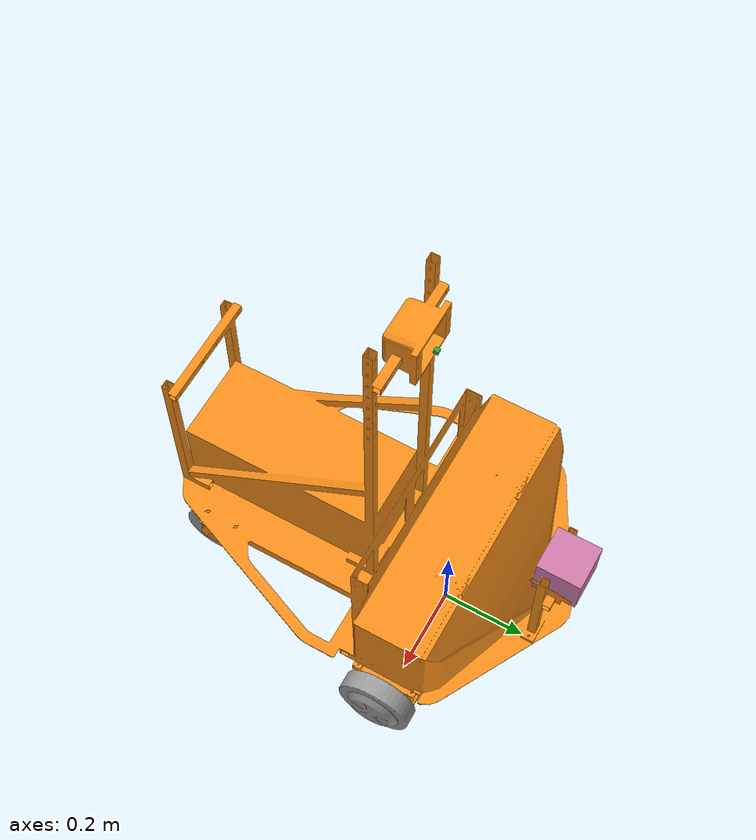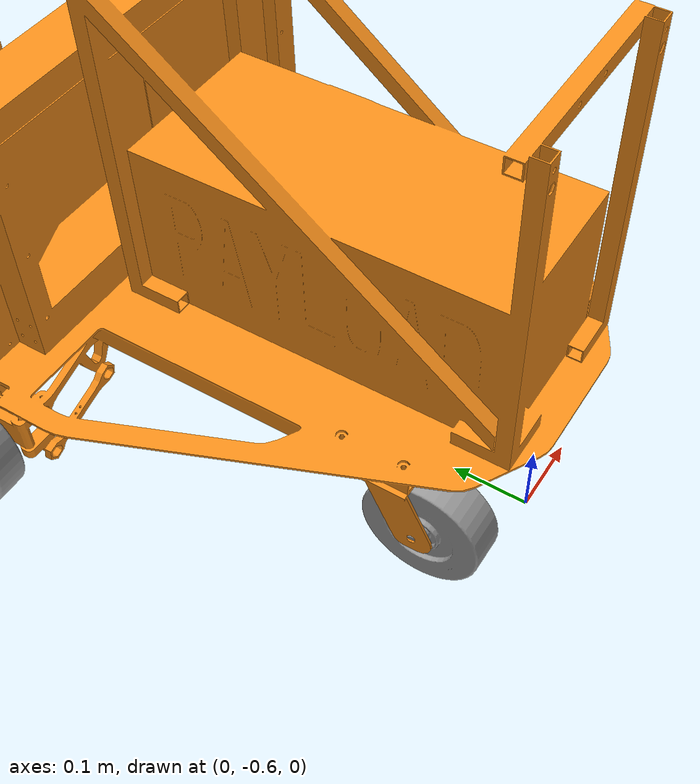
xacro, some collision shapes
<?xml version='1.0'?>

<robot name="myrobot" xmlns:xacro="http://www.ros.org/wiki/xacro">

  <!--camera -->
  <xacro:property name="cameraSize" value="0.01"/>
  <xacro:property name="cameraMass" value="0.03"/>

  <!--INS -->

  <!--Payload -->

   <!--Laptop -->

  <xacro:include filename="$(find boilerbot_description_integ)/urdf/mybot.gazebo" />
  <xacro:include filename="$(find boilerbot_description_integ)/urdf/materials.xacro" />
  <xacro:include filename="$(find boilerbot_description_integ)/urdf/macros.xacro" />

  <link name="chassis">
    <pose>0 0 0 0 0</pose>
    <collision>
      <origin xyz="0 0 0" rpy="0 0 0"/>
      <geometry>
    	<box size="0.1 0.1 0.1"/>
      </geometry>
    </collision>

    <visual>
      <origin xyz="0 0 0" rpy="0 0 0"/>
      <geometry>
        <mesh filename="package://boilerbot_description_integ/meshes/bodyNoWheels.dae"/>
      </geometry>
    </visual>

    <inertial>
      <mass value="76.65" />
      <origin xyz="0 0 0" rpy="0 0 0"/>
      <inertia ixx="1" ixy="0" ixz="0" iyy="1" iyz="0" izz="1" />
    </inertial>
  </link>

<!--Left Drive Wheel -->

  <link name="left_drive_wheel">
    <collision>
      <origin xyz="0 0 0" rpy="0 0 0"/>
      <geometry>
        <mesh filename="package://boilerbot_description_integ/meshes/driveWheelLeft.dae"/>
      </geometry>
    </collision>

    <visual>
      <origin xyz="0 0 0" rpy="0 0 0"/>
      <geometry>
        <mesh filename="package://boilerbot_description_integ/meshes/driveWheelLeft.dae"/>
      </geometry>
    </visual>

    <inertial>
      <mass value="2.5" />
      <origin xyz="0 0 0" rpy="0 0 0"/>
      <inertia ixx="1" ixy="0" ixz="0" iyy="1" iyz="0" izz="1" />
    </inertial>
  </link>

  <joint type="continuous" name="left_drive_hinge">
    <origin xyz="-0.0 0.0 0" rpy="0 0 0"/>
    <child link="left_drive_wheel"/>
    <parent link="chassis"/>
    <axis xyz="0 1 0" rpy="0 0 0"/>
    <limit effort="100" velocity="100"/>
    <joint_properties damping="0.0" friction="0.0"/>
  </joint>

<!--Right Drive Wheel -->

  <link name="right_drive_wheel">
    <collision>
      <origin xyz="0 0 0" rpy="0 0 0"/>
      <geometry>
        <mesh filename="package://boilerbot_description_integ/meshes/driveWheelRight.dae"/>
      </geometry>
    </collision>

    <visual>
      <origin xyz="0 0 0" rpy="0 0 0"/>
      <geometry>
        <mesh filename="package://boilerbot_description_integ/meshes/driveWheelRight.dae"/>
      </geometry>
    </visual>

    <inertial>
      <mass value="2.5" />
      <origin xyz="0 0 0" rpy="0 0 0"/>
      <inertia ixx="1" ixy="0" ixz="0" iyy="1" iyz="0" izz="1" />
    </inertial>
  </link>

  <joint type="continuous" name="right_drive_hinge">
    <origin xyz="-0.0 0.0 0" rpy="0 0 0"/>
    <child link="right_drive_wheel"/>
    <parent link="chassis"/>
    <axis xyz="0 1 0" rpy="0 0 0"/>
    <limit effort="100" velocity="100"/>
    <joint_properties damping="0.0" friction="0.0"/>
  </joint>

<!--Left Castor Wheel -->

  <link name="left_castor_wheel">
    <collision>
      <origin xyz="0 0 0" rpy="0 0 0"/>
      <geometry>
        <mesh filename="package://boilerbot_description_integ/meshes/castorLeft.dae"/>
      </geometry>
    </collision>

    <visual>
      <origin xyz="0 0 0" rpy="0 0 0"/>
      <geometry>
        <mesh filename="package://boilerbot_description_integ/meshes/castorLeft.dae"/>
      </geometry>
    </visual>

    <inertial>
      <mass value="1.5" />
      <origin xyz="0 0 0" rpy="0 0 0"/>
      <inertia ixx="1" ixy="0" ixz="0" iyy="1" iyz="0" izz="1" />
    </inertial>
  </link>

  <joint type="continuous" name="left_castor_hinge">
    <origin xyz="0.0 0.0 0" rpy="0 0 0"/>
    <child link="left_castor_wheel"/>
    <parent link="chassis"/>
    <axis xyz="0 1 0" rpy="0 0 0"/>
    <limit effort="100" velocity="100"/>
    <joint_properties damping="0.0" friction="0.0"/>
  </joint>

<!--Right Castor Wheel -->

  <link name="right_castor_wheel">
    <collision>
      <origin xyz="0 0 0" rpy="0 0 0"/>
      <geometry>
        <mesh filename="package://boilerbot_description_integ/meshes/castorRight.dae"/>
      </geometry>
    </collision>

    <visual>
      <origin xyz="0 0 0" rpy="0 0 0"/>
      <geometry>
        <mesh filename="package://boilerbot_description_integ/meshes/castorRight.dae"/>
      </geometry>
    </visual>

    <inertial>
      <mass value="1.5" />
      <origin xyz="0 0 0" rpy="0 0 0"/>
      <inertia ixx="1" ixy="0" ixz="0" iyy="1" iyz="0" izz="1" />
    </inertial>
  </link>

  <joint type="continuous" name="right_castor_hinge">
    <origin xyz="-0.0 0.0 0" rpy="0 0 0"/>
    <child link="right_castor_wheel"/>
    <parent link="chassis"/>
    <axis xyz="0 1 0" rpy="0 0 0"/>
    <limit effort="100" velocity="100"/>
    <joint_properties damping="0.0" friction="0.0"/>
  </joint>

<!-- Camera -->

  <link name="camera">
    <collision>
      <origin xyz="0 0 0" rpy="0 0 0"/>
      <geometry>
        <box size="0.1 0.01 0.1"/>
      </geometry>
    </collision>

    <visual>
      <origin xyz="0 0 0" rpy="0 0 0"/>
      <geometry>
        <box size="${cameraSize} ${cameraSize} ${cameraSize}"/>
      </geometry>
      <material name="green"/>
    </visual>

    <inertial>
      <mass value="0.1" />
      <origin xyz="0 0 0" rpy="0 0 0"/>
      <box_inertia m="0.1" x="0.1" y="0.1" z="0.1" />
      <inertia ixx="1e-6" ixy="0" ixz="0" iyy="1e-6" iyz="0" izz="1e-6" />
    </inertial>
  </link>

  <joint name="camera_joint" type="fixed">
    <axis xyz="0 1 0" />
    <origin xyz="0 -0.06 1.046" rpy="-0 0.1 1.57"/>
    <parent link="chassis"/>
    <child link="camera"/>
  </joint>

  <!-- Hokuyo Laser -->
  <link name="hokuyo">
    <collision>
      <origin xyz="0 0 0" rpy="0 0 0"/>
      <geometry>
    	<box size="0.1 0.1 0.1"/>
      </geometry>
    </collision>

    <visual>
      <origin xyz="0 0 0" rpy="0 0 0"/>
      <geometry>
        <mesh filename="package://boilerbot_description_integ/meshes/hokuyo.dae"/>
      </geometry>
    </visual>

    <inertial>
      <mass value="1e-5" />
      <origin xyz="0 0 0" rpy="0 0 0"/>
      <inertia ixx="1e-6" ixy="0" ixz="0" iyy="1e-6" iyz="0" izz="1e-6" />
    </inertial>
  </link>

  <joint name="hokuyo_joint" type="fixed">
    <axis xyz="0 1 0" />
    <origin xyz="0 0.2612 .46" rpy="0 0.015 1.57"/>
    <parent link="chassis"/>
    <child link="hokuyo"/>
  </joint>

</robot>
